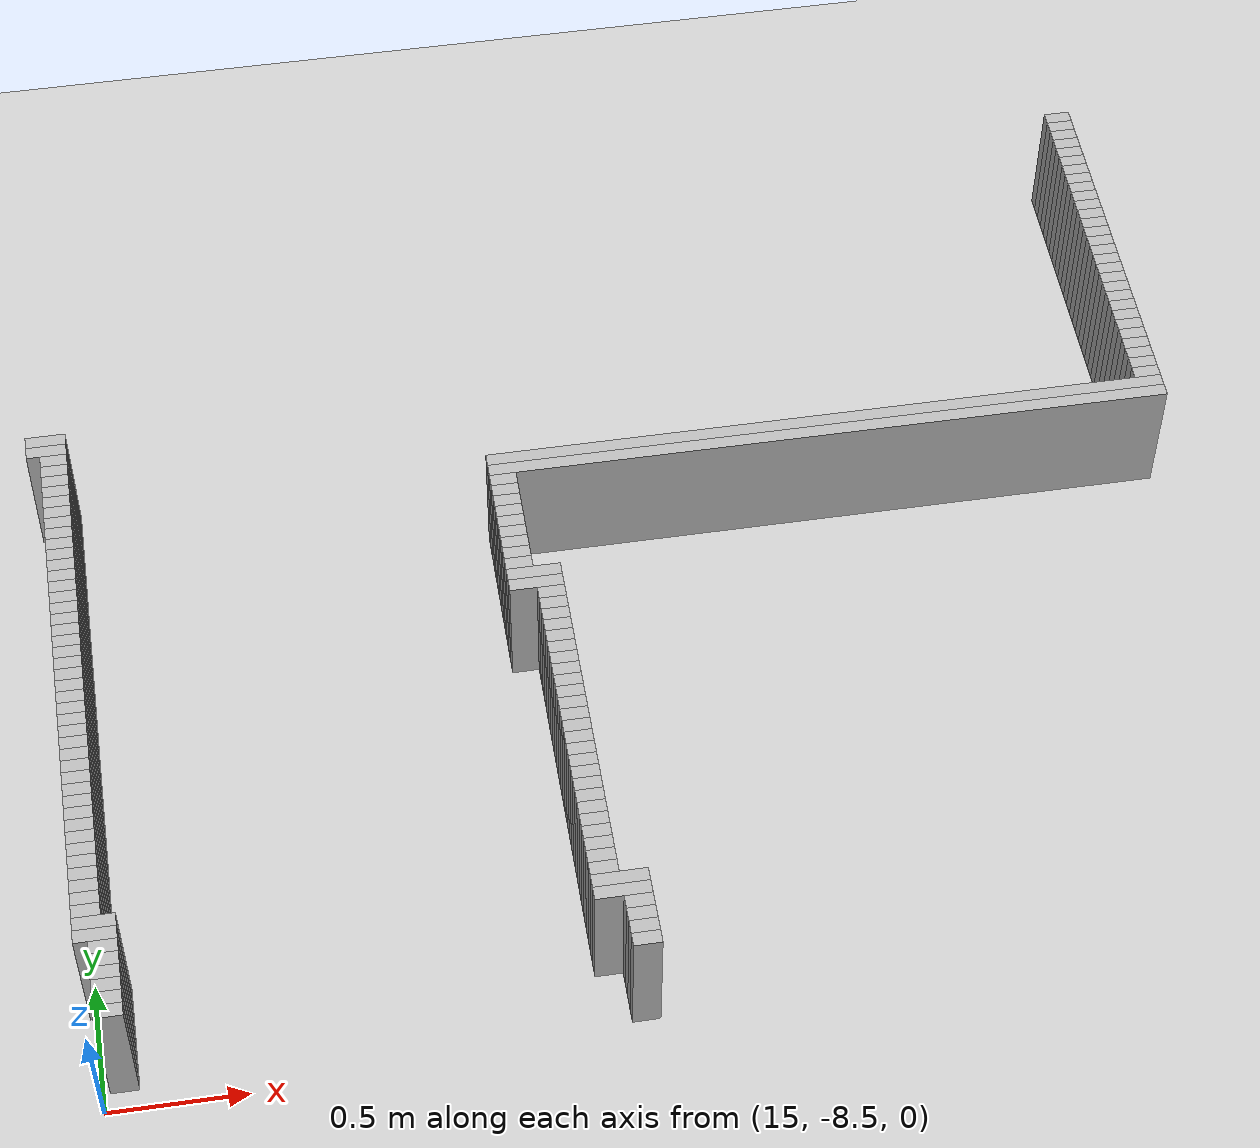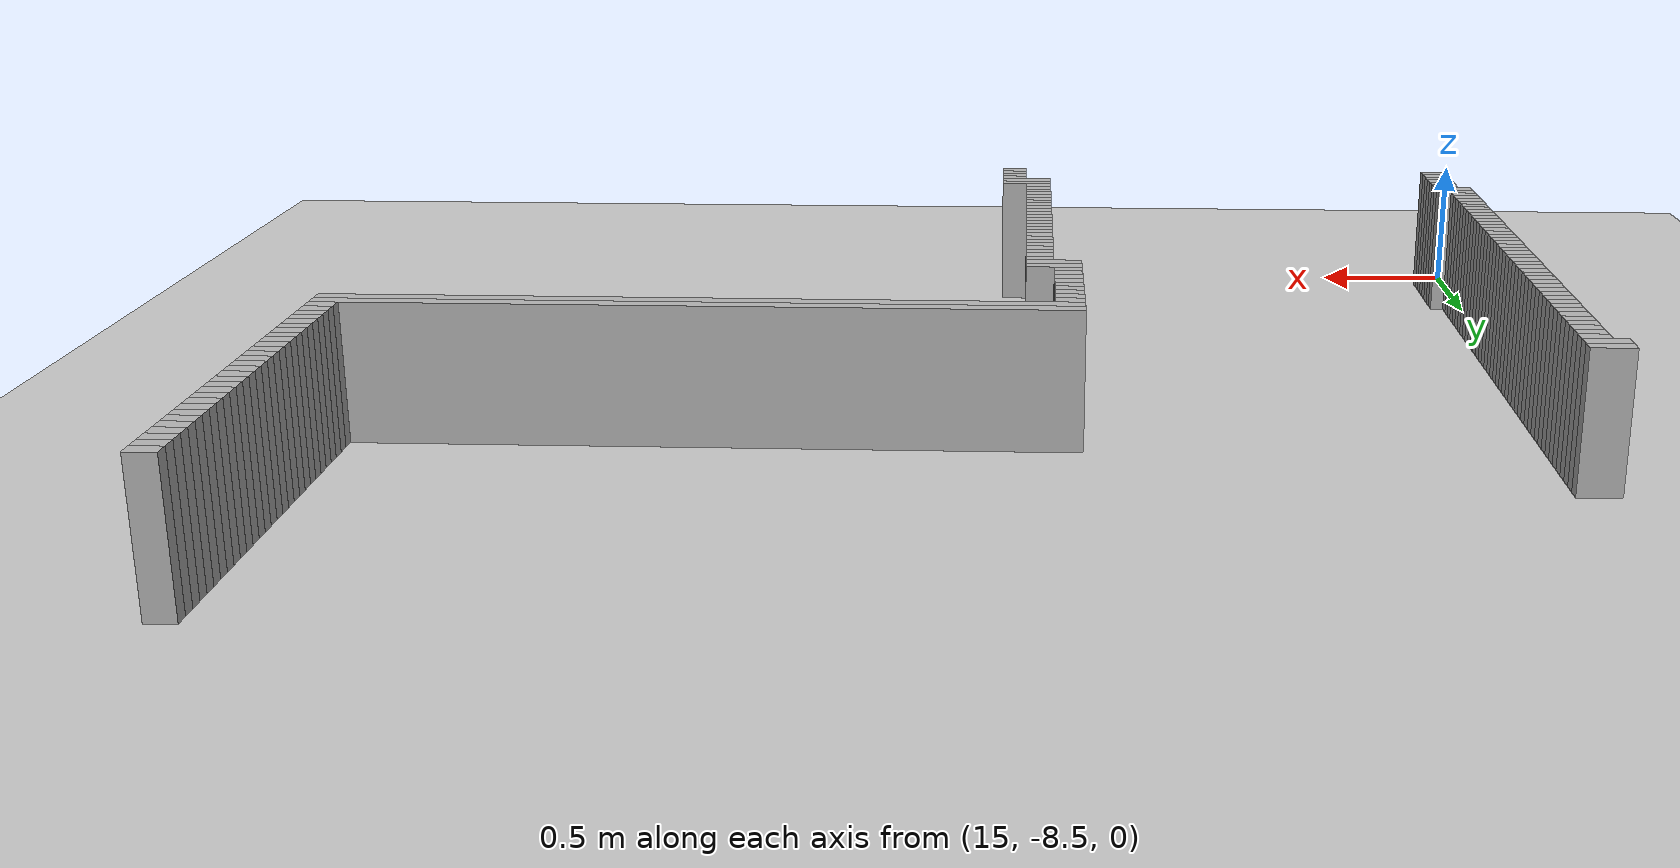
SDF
<sdf version="1.6">
 <world name="optimized_map_world">
  <include><uri>model://sun</uri></include>
  <include><uri>model://ground_plane</uri></include>
  <model name="obstacle_417">
   <static>true</static>
   <link name="link">
    <collision name="collision"><geometry><box><size>0.1 0.05 0.5</size></box></geometry></collision>
    <visual name="visual"><geometry><box><size>0.1 0.05 0.5</size></box></geometry></visual>
   </link>
   <pose>19.175 -4.800000000000001 0.25 0 0 0</pose>
  </model>
  <model name="obstacle_421">
   <static>true</static>
   <link name="link">
    <collision name="collision"><geometry><box><size>0.1 0.05 0.5</size></box></geometry></collision>
    <visual name="visual"><geometry><box><size>0.1 0.05 0.5</size></box></geometry></visual>
   </link>
   <pose>19.175 -4.85 0.25 0 0 0</pose>
  </model>
  <model name="obstacle_425">
   <static>true</static>
   <link name="link">
    <collision name="collision"><geometry><box><size>0.1 0.05 0.5</size></box></geometry></collision>
    <visual name="visual"><geometry><box><size>0.1 0.05 0.5</size></box></geometry></visual>
   </link>
   <pose>19.175 -4.9 0.25 0 0 0</pose>
  </model>
  <model name="obstacle_429">
   <static>true</static>
   <link name="link">
    <collision name="collision"><geometry><box><size>0.1 0.05 0.5</size></box></geometry></collision>
    <visual name="visual"><geometry><box><size>0.1 0.05 0.5</size></box></geometry></visual>
   </link>
   <pose>19.175 -4.949999999999999 0.25 0 0 0</pose>
  </model>
  <model name="obstacle_433">
   <static>true</static>
   <link name="link">
    <collision name="collision"><geometry><box><size>0.1 0.05 0.5</size></box></geometry></collision>
    <visual name="visual"><geometry><box><size>0.1 0.05 0.5</size></box></geometry></visual>
   </link>
   <pose>19.175 -5.0 0.25 0 0 0</pose>
  </model>
  <model name="obstacle_437">
   <static>true</static>
   <link name="link">
    <collision name="collision"><geometry><box><size>0.1 0.05 0.5</size></box></geometry></collision>
    <visual name="visual"><geometry><box><size>0.1 0.05 0.5</size></box></geometry></visual>
   </link>
   <pose>19.175 -5.050000000000001 0.25 0 0 0</pose>
  </model>
  <model name="obstacle_441">
   <static>true</static>
   <link name="link">
    <collision name="collision"><geometry><box><size>0.1 0.05 0.5</size></box></geometry></collision>
    <visual name="visual"><geometry><box><size>0.1 0.05 0.5</size></box></geometry></visual>
   </link>
   <pose>19.175 -5.1 0.25 0 0 0</pose>
  </model>
  <model name="obstacle_445">
   <static>true</static>
   <link name="link">
    <collision name="collision"><geometry><box><size>0.1 0.05 0.5</size></box></geometry></collision>
    <visual name="visual"><geometry><box><size>0.1 0.05 0.5</size></box></geometry></visual>
   </link>
   <pose>19.175 -5.15 0.25 0 0 0</pose>
  </model>
  <model name="obstacle_449">
   <static>true</static>
   <link name="link">
    <collision name="collision"><geometry><box><size>0.1 0.05 0.5</size></box></geometry></collision>
    <visual name="visual"><geometry><box><size>0.1 0.05 0.5</size></box></geometry></visual>
   </link>
   <pose>19.175 -5.199999999999999 0.25 0 0 0</pose>
  </model>
  <model name="obstacle_453">
   <static>true</static>
   <link name="link">
    <collision name="collision"><geometry><box><size>0.1 0.05 0.5</size></box></geometry></collision>
    <visual name="visual"><geometry><box><size>0.1 0.05 0.5</size></box></geometry></visual>
   </link>
   <pose>19.175 -5.25 0.25 0 0 0</pose>
  </model>
  <model name="obstacle_457">
   <static>true</static>
   <link name="link">
    <collision name="collision"><geometry><box><size>0.1 0.05 0.5</size></box></geometry></collision>
    <visual name="visual"><geometry><box><size>0.1 0.05 0.5</size></box></geometry></visual>
   </link>
   <pose>19.175 -5.300000000000001 0.25 0 0 0</pose>
  </model>
  <model name="obstacle_461">
   <static>true</static>
   <link name="link">
    <collision name="collision"><geometry><box><size>0.1 0.05 0.5</size></box></geometry></collision>
    <visual name="visual"><geometry><box><size>0.1 0.05 0.5</size></box></geometry></visual>
   </link>
   <pose>19.175 -5.35 0.25 0 0 0</pose>
  </model>
  <model name="obstacle_465">
   <static>true</static>
   <link name="link">
    <collision name="collision"><geometry><box><size>0.1 0.05 0.5</size></box></geometry></collision>
    <visual name="visual"><geometry><box><size>0.1 0.05 0.5</size></box></geometry></visual>
   </link>
   <pose>19.175 -5.4 0.25 0 0 0</pose>
  </model>
  <model name="obstacle_469">
   <static>true</static>
   <link name="link">
    <collision name="collision"><geometry><box><size>0.1 0.05 0.5</size></box></geometry></collision>
    <visual name="visual"><geometry><box><size>0.1 0.05 0.5</size></box></geometry></visual>
   </link>
   <pose>19.175 -5.449999999999999 0.25 0 0 0</pose>
  </model>
  <model name="obstacle_473">
   <static>true</static>
   <link name="link">
    <collision name="collision"><geometry><box><size>0.1 0.05 0.5</size></box></geometry></collision>
    <visual name="visual"><geometry><box><size>0.1 0.05 0.5</size></box></geometry></visual>
   </link>
   <pose>19.175 -5.5 0.25 0 0 0</pose>
  </model>
  <model name="obstacle_477">
   <static>true</static>
   <link name="link">
    <collision name="collision"><geometry><box><size>0.1 0.05 0.5</size></box></geometry></collision>
    <visual name="visual"><geometry><box><size>0.1 0.05 0.5</size></box></geometry></visual>
   </link>
   <pose>19.175 -5.550000000000001 0.25 0 0 0</pose>
  </model>
  <model name="obstacle_481">
   <static>true</static>
   <link name="link">
    <collision name="collision"><geometry><box><size>0.1 0.05 0.5</size></box></geometry></collision>
    <visual name="visual"><geometry><box><size>0.1 0.05 0.5</size></box></geometry></visual>
   </link>
   <pose>19.175 -5.6 0.25 0 0 0</pose>
  </model>
  <model name="obstacle_485">
   <static>true</static>
   <link name="link">
    <collision name="collision"><geometry><box><size>0.1 0.05 0.5</size></box></geometry></collision>
    <visual name="visual"><geometry><box><size>0.1 0.05 0.5</size></box></geometry></visual>
   </link>
   <pose>19.175 -5.65 0.25 0 0 0</pose>
  </model>
  <model name="obstacle_489">
   <static>true</static>
   <link name="link">
    <collision name="collision"><geometry><box><size>0.1 0.05 0.5</size></box></geometry></collision>
    <visual name="visual"><geometry><box><size>0.1 0.05 0.5</size></box></geometry></visual>
   </link>
   <pose>19.175 -5.699999999999999 0.25 0 0 0</pose>
  </model>
  <model name="obstacle_493">
   <static>true</static>
   <link name="link">
    <collision name="collision"><geometry><box><size>0.1 0.05 0.5</size></box></geometry></collision>
    <visual name="visual"><geometry><box><size>0.1 0.05 0.5</size></box></geometry></visual>
   </link>
   <pose>19.175 -5.75 0.25 0 0 0</pose>
  </model>
  <model name="obstacle_497">
   <static>true</static>
   <link name="link">
    <collision name="collision"><geometry><box><size>0.1 0.05 0.5</size></box></geometry></collision>
    <visual name="visual"><geometry><box><size>0.1 0.05 0.5</size></box></geometry></visual>
   </link>
   <pose>19.175 -5.800000000000001 0.25 0 0 0</pose>
  </model>
  <model name="obstacle_501">
   <static>true</static>
   <link name="link">
    <collision name="collision"><geometry><box><size>0.1 0.05 0.5</size></box></geometry></collision>
    <visual name="visual"><geometry><box><size>0.1 0.05 0.5</size></box></geometry></visual>
   </link>
   <pose>19.175 -5.85 0.25 0 0 0</pose>
  </model>
  <model name="obstacle_504">
   <static>true</static>
   <link name="link">
    <collision name="collision">
     <geometry><box><size>0.15000000000000002 0.05 0.5</size></box></geometry>
    </collision>
    <visual name="visual"><geometry><box><size>0.15000000000000002 0.05 0.5</size></box></geometry></visual>
   </link>
   <pose>15.000000000000004 -5.9 0.25 0 0 0</pose>
  </model>
  <model name="obstacle_505">
   <static>true</static>
   <link name="link">
    <collision name="collision"><geometry><box><size>0.1 0.05 0.5</size></box></geometry></collision>
    <visual name="visual"><geometry><box><size>0.1 0.05 0.5</size></box></geometry></visual>
   </link>
   <pose>19.175 -5.9 0.25 0 0 0</pose>
  </model>
  <model name="obstacle_508">
   <static>true</static>
   <link name="link">
    <collision name="collision">
     <geometry><box><size>0.15000000000000002 0.05 0.5</size></box></geometry>
    </collision>
    <visual name="visual"><geometry><box><size>0.15000000000000002 0.05 0.5</size></box></geometry></visual>
   </link>
   <pose>15.000000000000004 -5.949999999999999 0.25 0 0 0</pose>
  </model>
  <model name="obstacle_509">
   <static>true</static>
   <link name="link">
    <collision name="collision"><geometry><box><size>0.1 0.05 0.5</size></box></geometry></collision>
    <visual name="visual"><geometry><box><size>0.1 0.05 0.5</size></box></geometry></visual>
   </link>
   <pose>19.175 -5.949999999999999 0.25 0 0 0</pose>
  </model>
  <model name="obstacle_512">
   <static>true</static>
   <link name="link">
    <collision name="collision"><geometry><box><size>0.1 0.05 0.5</size></box></geometry></collision>
    <visual name="visual"><geometry><box><size>0.1 0.05 0.5</size></box></geometry></visual>
   </link>
   <pose>15.025000000000002 -6.0 0.25 0 0 0</pose>
  </model>
  <model name="obstacle_513">
   <static>true</static>
   <link name="link">
    <collision name="collision"><geometry><box><size>0.1 0.05 0.5</size></box></geometry></collision>
    <visual name="visual"><geometry><box><size>0.1 0.05 0.5</size></box></geometry></visual>
   </link>
   <pose>19.175 -6.0 0.25 0 0 0</pose>
  </model>
  <model name="obstacle_516">
   <static>true</static>
   <link name="link">
    <collision name="collision"><geometry><box><size>0.1 0.05 0.5</size></box></geometry></collision>
    <visual name="visual"><geometry><box><size>0.1 0.05 0.5</size></box></geometry></visual>
   </link>
   <pose>15.025000000000002 -6.050000000000001 0.25 0 0 0</pose>
  </model>
  <model name="obstacle_517">
   <static>true</static>
   <link name="link">
    <collision name="collision"><geometry><box><size>0.1 0.05 0.5</size></box></geometry></collision>
    <visual name="visual"><geometry><box><size>0.1 0.05 0.5</size></box></geometry></visual>
   </link>
   <pose>19.175 -6.050000000000001 0.25 0 0 0</pose>
  </model>
  <model name="obstacle_520">
   <static>true</static>
   <link name="link">
    <collision name="collision"><geometry><box><size>0.1 0.05 0.5</size></box></geometry></collision>
    <visual name="visual"><geometry><box><size>0.1 0.05 0.5</size></box></geometry></visual>
   </link>
   <pose>15.025000000000002 -6.1 0.25 0 0 0</pose>
  </model>
  <model name="obstacle_521">
   <static>true</static>
   <link name="link">
    <collision name="collision"><geometry><box><size>0.1 0.05 0.5</size></box></geometry></collision>
    <visual name="visual"><geometry><box><size>0.1 0.05 0.5</size></box></geometry></visual>
   </link>
   <pose>19.175 -6.1 0.25 0 0 0</pose>
  </model>
  <model name="obstacle_524">
   <static>true</static>
   <link name="link">
    <collision name="collision"><geometry><box><size>0.1 0.05 0.5</size></box></geometry></collision>
    <visual name="visual"><geometry><box><size>0.1 0.05 0.5</size></box></geometry></visual>
   </link>
   <pose>15.025000000000002 -6.15 0.25 0 0 0</pose>
  </model>
  <model name="obstacle_525">
   <static>true</static>
   <link name="link">
    <collision name="collision"><geometry><box><size>0.1 0.05 0.5</size></box></geometry></collision>
    <visual name="visual"><geometry><box><size>0.1 0.05 0.5</size></box></geometry></visual>
   </link>
   <pose>19.175 -6.15 0.25 0 0 0</pose>
  </model>
  <model name="obstacle_528">
   <static>true</static>
   <link name="link">
    <collision name="collision"><geometry><box><size>0.1 0.05 0.5</size></box></geometry></collision>
    <visual name="visual"><geometry><box><size>0.1 0.05 0.5</size></box></geometry></visual>
   </link>
   <pose>15.025000000000002 -6.199999999999999 0.25 0 0 0</pose>
  </model>
  <model name="obstacle_529">
   <static>true</static>
   <link name="link">
    <collision name="collision"><geometry><box><size>0.1 0.05 0.5</size></box></geometry></collision>
    <visual name="visual"><geometry><box><size>0.1 0.05 0.5</size></box></geometry></visual>
   </link>
   <pose>19.175 -6.199999999999999 0.25 0 0 0</pose>
  </model>
  <model name="obstacle_532">
   <static>true</static>
   <link name="link">
    <collision name="collision"><geometry><box><size>0.1 0.05 0.5</size></box></geometry></collision>
    <visual name="visual"><geometry><box><size>0.1 0.05 0.5</size></box></geometry></visual>
   </link>
   <pose>15.025000000000002 -6.25 0.25 0 0 0</pose>
  </model>
  <model name="obstacle_533">
   <static>true</static>
   <link name="link">
    <collision name="collision"><geometry><box><size>2.6 0.05 0.5</size></box></geometry></collision>
    <visual name="visual"><geometry><box><size>2.6 0.05 0.5</size></box></geometry></visual>
   </link>
   <pose>17.925 -6.25 0.25 0 0 0</pose>
  </model>
  <model name="obstacle_536">
   <static>true</static>
   <link name="link">
    <collision name="collision"><geometry><box><size>0.1 0.05 0.5</size></box></geometry></collision>
    <visual name="visual"><geometry><box><size>0.1 0.05 0.5</size></box></geometry></visual>
   </link>
   <pose>15.025000000000002 -6.300000000000001 0.25 0 0 0</pose>
  </model>
  <model name="obstacle_537">
   <static>true</static>
   <link name="link">
    <collision name="collision"><geometry><box><size>2.6 0.05 0.5</size></box></geometry></collision>
    <visual name="visual"><geometry><box><size>2.6 0.05 0.5</size></box></geometry></visual>
   </link>
   <pose>17.925 -6.300000000000001 0.25 0 0 0</pose>
  </model>
  <model name="obstacle_540">
   <static>true</static>
   <link name="link">
    <collision name="collision"><geometry><box><size>0.1 0.05 0.5</size></box></geometry></collision>
    <visual name="visual"><geometry><box><size>0.1 0.05 0.5</size></box></geometry></visual>
   </link>
   <pose>15.025000000000002 -6.35 0.25 0 0 0</pose>
  </model>
  <model name="obstacle_541">
   <static>true</static>
   <link name="link">
    <collision name="collision"><geometry><box><size>0.1 0.05 0.5</size></box></geometry></collision>
    <visual name="visual"><geometry><box><size>0.1 0.05 0.5</size></box></geometry></visual>
   </link>
   <pose>16.675 -6.35 0.25 0 0 0</pose>
  </model>
  <model name="obstacle_544">
   <static>true</static>
   <link name="link">
    <collision name="collision"><geometry><box><size>0.1 0.05 0.5</size></box></geometry></collision>
    <visual name="visual"><geometry><box><size>0.1 0.05 0.5</size></box></geometry></visual>
   </link>
   <pose>15.025000000000002 -6.4 0.25 0 0 0</pose>
  </model>
  <model name="obstacle_545">
   <static>true</static>
   <link name="link">
    <collision name="collision"><geometry><box><size>0.1 0.05 0.5</size></box></geometry></collision>
    <visual name="visual"><geometry><box><size>0.1 0.05 0.5</size></box></geometry></visual>
   </link>
   <pose>16.675 -6.4 0.25 0 0 0</pose>
  </model>
  <model name="obstacle_548">
   <static>true</static>
   <link name="link">
    <collision name="collision"><geometry><box><size>0.1 0.05 0.5</size></box></geometry></collision>
    <visual name="visual"><geometry><box><size>0.1 0.05 0.5</size></box></geometry></visual>
   </link>
   <pose>15.025000000000002 -6.449999999999999 0.25 0 0 0</pose>
  </model>
  <model name="obstacle_549">
   <static>true</static>
   <link name="link">
    <collision name="collision"><geometry><box><size>0.1 0.05 0.5</size></box></geometry></collision>
    <visual name="visual"><geometry><box><size>0.1 0.05 0.5</size></box></geometry></visual>
   </link>
   <pose>16.675 -6.449999999999999 0.25 0 0 0</pose>
  </model>
  <model name="obstacle_552">
   <static>true</static>
   <link name="link">
    <collision name="collision"><geometry><box><size>0.1 0.05 0.5</size></box></geometry></collision>
    <visual name="visual"><geometry><box><size>0.1 0.05 0.5</size></box></geometry></visual>
   </link>
   <pose>15.025000000000002 -6.5 0.25 0 0 0</pose>
  </model>
  <model name="obstacle_553">
   <static>true</static>
   <link name="link">
    <collision name="collision"><geometry><box><size>0.1 0.05 0.5</size></box></geometry></collision>
    <visual name="visual"><geometry><box><size>0.1 0.05 0.5</size></box></geometry></visual>
   </link>
   <pose>16.675 -6.5 0.25 0 0 0</pose>
  </model>
  <model name="obstacle_556">
   <static>true</static>
   <link name="link">
    <collision name="collision"><geometry><box><size>0.1 0.05 0.5</size></box></geometry></collision>
    <visual name="visual"><geometry><box><size>0.1 0.05 0.5</size></box></geometry></visual>
   </link>
   <pose>15.025000000000002 -6.550000000000001 0.25 0 0 0</pose>
  </model>
  <model name="obstacle_557">
   <static>true</static>
   <link name="link">
    <collision name="collision"><geometry><box><size>0.1 0.05 0.5</size></box></geometry></collision>
    <visual name="visual"><geometry><box><size>0.1 0.05 0.5</size></box></geometry></visual>
   </link>
   <pose>16.675 -6.550000000000001 0.25 0 0 0</pose>
  </model>
  <model name="obstacle_560">
   <static>true</static>
   <link name="link">
    <collision name="collision"><geometry><box><size>0.1 0.05 0.5</size></box></geometry></collision>
    <visual name="visual"><geometry><box><size>0.1 0.05 0.5</size></box></geometry></visual>
   </link>
   <pose>15.025000000000002 -6.6 0.25 0 0 0</pose>
  </model>
  <model name="obstacle_561">
   <static>true</static>
   <link name="link">
    <collision name="collision"><geometry><box><size>0.1 0.05 0.5</size></box></geometry></collision>
    <visual name="visual"><geometry><box><size>0.1 0.05 0.5</size></box></geometry></visual>
   </link>
   <pose>16.675 -6.6 0.25 0 0 0</pose>
  </model>
  <model name="obstacle_564">
   <static>true</static>
   <link name="link">
    <collision name="collision"><geometry><box><size>0.1 0.05 0.5</size></box></geometry></collision>
    <visual name="visual"><geometry><box><size>0.1 0.05 0.5</size></box></geometry></visual>
   </link>
   <pose>15.025000000000002 -6.65 0.25 0 0 0</pose>
  </model>
  <model name="obstacle_565">
   <static>true</static>
   <link name="link">
    <collision name="collision"><geometry><box><size>0.1 0.05 0.5</size></box></geometry></collision>
    <visual name="visual"><geometry><box><size>0.1 0.05 0.5</size></box></geometry></visual>
   </link>
   <pose>16.675 -6.65 0.25 0 0 0</pose>
  </model>
  <model name="obstacle_568">
   <static>true</static>
   <link name="link">
    <collision name="collision"><geometry><box><size>0.1 0.05 0.5</size></box></geometry></collision>
    <visual name="visual"><geometry><box><size>0.1 0.05 0.5</size></box></geometry></visual>
   </link>
   <pose>15.025000000000002 -6.699999999999999 0.25 0 0 0</pose>
  </model>
  <model name="obstacle_569">
   <static>true</static>
   <link name="link">
    <collision name="collision"><geometry><box><size>0.1 0.05 0.5</size></box></geometry></collision>
    <visual name="visual"><geometry><box><size>0.1 0.05 0.5</size></box></geometry></visual>
   </link>
   <pose>16.675 -6.699999999999999 0.25 0 0 0</pose>
  </model>
  <model name="obstacle_572">
   <static>true</static>
   <link name="link">
    <collision name="collision"><geometry><box><size>0.1 0.05 0.5</size></box></geometry></collision>
    <visual name="visual"><geometry><box><size>0.1 0.05 0.5</size></box></geometry></visual>
   </link>
   <pose>15.025000000000002 -6.75 0.25 0 0 0</pose>
  </model>
  <model name="obstacle_573">
   <static>true</static>
   <link name="link">
    <collision name="collision"><geometry><box><size>0.1 0.05 0.5</size></box></geometry></collision>
    <visual name="visual"><geometry><box><size>0.1 0.05 0.5</size></box></geometry></visual>
   </link>
   <pose>16.675 -6.75 0.25 0 0 0</pose>
  </model>
  <model name="obstacle_576">
   <static>true</static>
   <link name="link">
    <collision name="collision"><geometry><box><size>0.1 0.05 0.5</size></box></geometry></collision>
    <visual name="visual"><geometry><box><size>0.1 0.05 0.5</size></box></geometry></visual>
   </link>
   <pose>15.025000000000002 -6.800000000000001 0.25 0 0 0</pose>
  </model>
  <model name="obstacle_577">
   <static>true</static>
   <link name="link">
    <collision name="collision"><geometry><box><size>0.2 0.05 0.5</size></box></geometry></collision>
    <visual name="visual"><geometry><box><size>0.2 0.05 0.5</size></box></geometry></visual>
   </link>
   <pose>16.725000000000005 -6.800000000000001 0.25 0 0 0</pose>
  </model>
  <model name="obstacle_580">
   <static>true</static>
   <link name="link">
    <collision name="collision"><geometry><box><size>0.1 0.05 0.5</size></box></geometry></collision>
    <visual name="visual"><geometry><box><size>0.1 0.05 0.5</size></box></geometry></visual>
   </link>
   <pose>15.025000000000002 -6.85 0.25 0 0 0</pose>
  </model>
  <model name="obstacle_581">
   <static>true</static>
   <link name="link">
    <collision name="collision"><geometry><box><size>0.2 0.05 0.5</size></box></geometry></collision>
    <visual name="visual"><geometry><box><size>0.2 0.05 0.5</size></box></geometry></visual>
   </link>
   <pose>16.725000000000005 -6.85 0.25 0 0 0</pose>
  </model>
  <model name="obstacle_584">
   <static>true</static>
   <link name="link">
    <collision name="collision"><geometry><box><size>0.1 0.05 0.5</size></box></geometry></collision>
    <visual name="visual"><geometry><box><size>0.1 0.05 0.5</size></box></geometry></visual>
   </link>
   <pose>15.025000000000002 -6.9 0.25 0 0 0</pose>
  </model>
  <model name="obstacle_585">
   <static>true</static>
   <link name="link">
    <collision name="collision"><geometry><box><size>0.1 0.05 0.5</size></box></geometry></collision>
    <visual name="visual"><geometry><box><size>0.1 0.05 0.5</size></box></geometry></visual>
   </link>
   <pose>16.775000000000002 -6.9 0.25 0 0 0</pose>
  </model>
  <model name="obstacle_588">
   <static>true</static>
   <link name="link">
    <collision name="collision"><geometry><box><size>0.1 0.05 0.5</size></box></geometry></collision>
    <visual name="visual"><geometry><box><size>0.1 0.05 0.5</size></box></geometry></visual>
   </link>
   <pose>15.025000000000002 -6.949999999999999 0.25 0 0 0</pose>
  </model>
  <model name="obstacle_589">
   <static>true</static>
   <link name="link">
    <collision name="collision"><geometry><box><size>0.1 0.05 0.5</size></box></geometry></collision>
    <visual name="visual"><geometry><box><size>0.1 0.05 0.5</size></box></geometry></visual>
   </link>
   <pose>16.775000000000002 -6.949999999999999 0.25 0 0 0</pose>
  </model>
  <model name="obstacle_592">
   <static>true</static>
   <link name="link">
    <collision name="collision"><geometry><box><size>0.1 0.05 0.5</size></box></geometry></collision>
    <visual name="visual"><geometry><box><size>0.1 0.05 0.5</size></box></geometry></visual>
   </link>
   <pose>15.025000000000002 -7.0 0.25 0 0 0</pose>
  </model>
  <model name="obstacle_593">
   <static>true</static>
   <link name="link">
    <collision name="collision"><geometry><box><size>0.1 0.05 0.5</size></box></geometry></collision>
    <visual name="visual"><geometry><box><size>0.1 0.05 0.5</size></box></geometry></visual>
   </link>
   <pose>16.775000000000002 -7.0 0.25 0 0 0</pose>
  </model>
  <model name="obstacle_596">
   <static>true</static>
   <link name="link">
    <collision name="collision"><geometry><box><size>0.1 0.05 0.5</size></box></geometry></collision>
    <visual name="visual"><geometry><box><size>0.1 0.05 0.5</size></box></geometry></visual>
   </link>
   <pose>15.025000000000002 -7.050000000000001 0.25 0 0 0</pose>
  </model>
  <model name="obstacle_597">
   <static>true</static>
   <link name="link">
    <collision name="collision"><geometry><box><size>0.1 0.05 0.5</size></box></geometry></collision>
    <visual name="visual"><geometry><box><size>0.1 0.05 0.5</size></box></geometry></visual>
   </link>
   <pose>16.775000000000002 -7.050000000000001 0.25 0 0 0</pose>
  </model>
  <model name="obstacle_600">
   <static>true</static>
   <link name="link">
    <collision name="collision"><geometry><box><size>0.1 0.05 0.5</size></box></geometry></collision>
    <visual name="visual"><geometry><box><size>0.1 0.05 0.5</size></box></geometry></visual>
   </link>
   <pose>15.025000000000002 -7.1 0.25 0 0 0</pose>
  </model>
  <model name="obstacle_601">
   <static>true</static>
   <link name="link">
    <collision name="collision"><geometry><box><size>0.1 0.05 0.5</size></box></geometry></collision>
    <visual name="visual"><geometry><box><size>0.1 0.05 0.5</size></box></geometry></visual>
   </link>
   <pose>16.775000000000002 -7.1 0.25 0 0 0</pose>
  </model>
  <model name="obstacle_604">
   <static>true</static>
   <link name="link">
    <collision name="collision"><geometry><box><size>0.1 0.05 0.5</size></box></geometry></collision>
    <visual name="visual"><geometry><box><size>0.1 0.05 0.5</size></box></geometry></visual>
   </link>
   <pose>15.025000000000002 -7.15 0.25 0 0 0</pose>
  </model>
  <model name="obstacle_605">
   <static>true</static>
   <link name="link">
    <collision name="collision"><geometry><box><size>0.1 0.05 0.5</size></box></geometry></collision>
    <visual name="visual"><geometry><box><size>0.1 0.05 0.5</size></box></geometry></visual>
   </link>
   <pose>16.775000000000002 -7.15 0.25 0 0 0</pose>
  </model>
  <model name="obstacle_608">
   <static>true</static>
   <link name="link">
    <collision name="collision"><geometry><box><size>0.1 0.05 0.5</size></box></geometry></collision>
    <visual name="visual"><geometry><box><size>0.1 0.05 0.5</size></box></geometry></visual>
   </link>
   <pose>15.025000000000002 -7.199999999999999 0.25 0 0 0</pose>
  </model>
  <model name="obstacle_609">
   <static>true</static>
   <link name="link">
    <collision name="collision"><geometry><box><size>0.1 0.05 0.5</size></box></geometry></collision>
    <visual name="visual"><geometry><box><size>0.1 0.05 0.5</size></box></geometry></visual>
   </link>
   <pose>16.775000000000002 -7.199999999999999 0.25 0 0 0</pose>
  </model>
  <model name="obstacle_612">
   <static>true</static>
   <link name="link">
    <collision name="collision"><geometry><box><size>0.1 0.05 0.5</size></box></geometry></collision>
    <visual name="visual"><geometry><box><size>0.1 0.05 0.5</size></box></geometry></visual>
   </link>
   <pose>15.025000000000002 -7.25 0.25 0 0 0</pose>
  </model>
  <model name="obstacle_613">
   <static>true</static>
   <link name="link">
    <collision name="collision"><geometry><box><size>0.1 0.05 0.5</size></box></geometry></collision>
    <visual name="visual"><geometry><box><size>0.1 0.05 0.5</size></box></geometry></visual>
   </link>
   <pose>16.775000000000002 -7.25 0.25 0 0 0</pose>
  </model>
  <model name="obstacle_616">
   <static>true</static>
   <link name="link">
    <collision name="collision"><geometry><box><size>0.1 0.05 0.5</size></box></geometry></collision>
    <visual name="visual"><geometry><box><size>0.1 0.05 0.5</size></box></geometry></visual>
   </link>
   <pose>15.025000000000002 -7.300000000000001 0.25 0 0 0</pose>
  </model>
  <model name="obstacle_617">
   <static>true</static>
   <link name="link">
    <collision name="collision"><geometry><box><size>0.1 0.05 0.5</size></box></geometry></collision>
    <visual name="visual"><geometry><box><size>0.1 0.05 0.5</size></box></geometry></visual>
   </link>
   <pose>16.775000000000002 -7.300000000000001 0.25 0 0 0</pose>
  </model>
  <model name="obstacle_620">
   <static>true</static>
   <link name="link">
    <collision name="collision"><geometry><box><size>0.1 0.05 0.5</size></box></geometry></collision>
    <visual name="visual"><geometry><box><size>0.1 0.05 0.5</size></box></geometry></visual>
   </link>
   <pose>15.025000000000002 -7.35 0.25 0 0 0</pose>
  </model>
  <model name="obstacle_621">
   <static>true</static>
   <link name="link">
    <collision name="collision"><geometry><box><size>0.1 0.05 0.5</size></box></geometry></collision>
    <visual name="visual"><geometry><box><size>0.1 0.05 0.5</size></box></geometry></visual>
   </link>
   <pose>16.775000000000002 -7.35 0.25 0 0 0</pose>
  </model>
  <model name="obstacle_624">
   <static>true</static>
   <link name="link">
    <collision name="collision"><geometry><box><size>0.1 0.05 0.5</size></box></geometry></collision>
    <visual name="visual"><geometry><box><size>0.1 0.05 0.5</size></box></geometry></visual>
   </link>
   <pose>15.025000000000002 -7.4 0.25 0 0 0</pose>
  </model>
  <model name="obstacle_625">
   <static>true</static>
   <link name="link">
    <collision name="collision"><geometry><box><size>0.1 0.05 0.5</size></box></geometry></collision>
    <visual name="visual"><geometry><box><size>0.1 0.05 0.5</size></box></geometry></visual>
   </link>
   <pose>16.775000000000002 -7.4 0.25 0 0 0</pose>
  </model>
  <model name="obstacle_628">
   <static>true</static>
   <link name="link">
    <collision name="collision"><geometry><box><size>0.1 0.05 0.5</size></box></geometry></collision>
    <visual name="visual"><geometry><box><size>0.1 0.05 0.5</size></box></geometry></visual>
   </link>
   <pose>15.025000000000002 -7.449999999999999 0.25 0 0 0</pose>
  </model>
  <model name="obstacle_629">
   <static>true</static>
   <link name="link">
    <collision name="collision"><geometry><box><size>0.1 0.05 0.5</size></box></geometry></collision>
    <visual name="visual"><geometry><box><size>0.1 0.05 0.5</size></box></geometry></visual>
   </link>
   <pose>16.775000000000002 -7.449999999999999 0.25 0 0 0</pose>
  </model>
  <model name="obstacle_632">
   <static>true</static>
   <link name="link">
    <collision name="collision"><geometry><box><size>0.1 0.05 0.5</size></box></geometry></collision>
    <visual name="visual"><geometry><box><size>0.1 0.05 0.5</size></box></geometry></visual>
   </link>
   <pose>15.025000000000002 -7.5 0.25 0 0 0</pose>
  </model>
  <model name="obstacle_633">
   <static>true</static>
   <link name="link">
    <collision name="collision"><geometry><box><size>0.1 0.05 0.5</size></box></geometry></collision>
    <visual name="visual"><geometry><box><size>0.1 0.05 0.5</size></box></geometry></visual>
   </link>
   <pose>16.775000000000002 -7.5 0.25 0 0 0</pose>
  </model>
  <model name="obstacle_636">
   <static>true</static>
   <link name="link">
    <collision name="collision"><geometry><box><size>0.1 0.05 0.5</size></box></geometry></collision>
    <visual name="visual"><geometry><box><size>0.1 0.05 0.5</size></box></geometry></visual>
   </link>
   <pose>15.025000000000002 -7.550000000000001 0.25 0 0 0</pose>
  </model>
  <model name="obstacle_637">
   <static>true</static>
   <link name="link">
    <collision name="collision"><geometry><box><size>0.1 0.05 0.5</size></box></geometry></collision>
    <visual name="visual"><geometry><box><size>0.1 0.05 0.5</size></box></geometry></visual>
   </link>
   <pose>16.775000000000002 -7.550000000000001 0.25 0 0 0</pose>
  </model>
  <model name="obstacle_640">
   <static>true</static>
   <link name="link">
    <collision name="collision"><geometry><box><size>0.1 0.05 0.5</size></box></geometry></collision>
    <visual name="visual"><geometry><box><size>0.1 0.05 0.5</size></box></geometry></visual>
   </link>
   <pose>15.025000000000002 -7.6 0.25 0 0 0</pose>
  </model>
  <model name="obstacle_641">
   <static>true</static>
   <link name="link">
    <collision name="collision"><geometry><box><size>0.1 0.05 0.5</size></box></geometry></collision>
    <visual name="visual"><geometry><box><size>0.1 0.05 0.5</size></box></geometry></visual>
   </link>
   <pose>16.775000000000002 -7.6 0.25 0 0 0</pose>
  </model>
  <model name="obstacle_644">
   <static>true</static>
   <link name="link">
    <collision name="collision"><geometry><box><size>0.1 0.05 0.5</size></box></geometry></collision>
    <visual name="visual"><geometry><box><size>0.1 0.05 0.5</size></box></geometry></visual>
   </link>
   <pose>15.025000000000002 -7.65 0.25 0 0 0</pose>
  </model>
  <model name="obstacle_645">
   <static>true</static>
   <link name="link">
    <collision name="collision"><geometry><box><size>0.1 0.05 0.5</size></box></geometry></collision>
    <visual name="visual"><geometry><box><size>0.1 0.05 0.5</size></box></geometry></visual>
   </link>
   <pose>16.775000000000002 -7.65 0.25 0 0 0</pose>
  </model>
  <model name="obstacle_648">
   <static>true</static>
   <link name="link">
    <collision name="collision"><geometry><box><size>0.1 0.05 0.5</size></box></geometry></collision>
    <visual name="visual"><geometry><box><size>0.1 0.05 0.5</size></box></geometry></visual>
   </link>
   <pose>15.025000000000002 -7.699999999999999 0.25 0 0 0</pose>
  </model>
  <model name="obstacle_649">
   <static>true</static>
   <link name="link">
    <collision name="collision"><geometry><box><size>0.1 0.05 0.5</size></box></geometry></collision>
    <visual name="visual"><geometry><box><size>0.1 0.05 0.5</size></box></geometry></visual>
   </link>
   <pose>16.775000000000002 -7.699999999999999 0.25 0 0 0</pose>
  </model>
  <model name="obstacle_652">
   <static>true</static>
   <link name="link">
    <collision name="collision"><geometry><box><size>0.1 0.05 0.5</size></box></geometry></collision>
    <visual name="visual"><geometry><box><size>0.1 0.05 0.5</size></box></geometry></visual>
   </link>
   <pose>15.025000000000002 -7.75 0.25 0 0 0</pose>
  </model>
  <model name="obstacle_653">
   <static>true</static>
   <link name="link">
    <collision name="collision"><geometry><box><size>0.1 0.05 0.5</size></box></geometry></collision>
    <visual name="visual"><geometry><box><size>0.1 0.05 0.5</size></box></geometry></visual>
   </link>
   <pose>16.775000000000002 -7.75 0.25 0 0 0</pose>
  </model>
  <model name="obstacle_656">
   <static>true</static>
   <link name="link">
    <collision name="collision"><geometry><box><size>0.1 0.05 0.5</size></box></geometry></collision>
    <visual name="visual"><geometry><box><size>0.1 0.05 0.5</size></box></geometry></visual>
   </link>
   <pose>15.025000000000002 -7.800000000000001 0.25 0 0 0</pose>
  </model>
  <model name="obstacle_657">
   <static>true</static>
   <link name="link">
    <collision name="collision"><geometry><box><size>0.1 0.05 0.5</size></box></geometry></collision>
    <visual name="visual"><geometry><box><size>0.1 0.05 0.5</size></box></geometry></visual>
   </link>
   <pose>16.775000000000002 -7.800000000000001 0.25 0 0 0</pose>
  </model>
  <model name="obstacle_660">
   <static>true</static>
   <link name="link">
    <collision name="collision"><geometry><box><size>0.1 0.05 0.5</size></box></geometry></collision>
    <visual name="visual"><geometry><box><size>0.1 0.05 0.5</size></box></geometry></visual>
   </link>
   <pose>15.025000000000002 -7.85 0.25 0 0 0</pose>
  </model>
  <model name="obstacle_661">
   <static>true</static>
   <link name="link">
    <collision name="collision"><geometry><box><size>0.1 0.05 0.5</size></box></geometry></collision>
    <visual name="visual"><geometry><box><size>0.1 0.05 0.5</size></box></geometry></visual>
   </link>
   <pose>16.775000000000002 -7.85 0.25 0 0 0</pose>
  </model>
  <model name="obstacle_664">
   <static>true</static>
   <link name="link">
    <collision name="collision"><geometry><box><size>0.1 0.05 0.5</size></box></geometry></collision>
    <visual name="visual"><geometry><box><size>0.1 0.05 0.5</size></box></geometry></visual>
   </link>
   <pose>15.025000000000002 -7.9 0.25 0 0 0</pose>
  </model>
  <model name="obstacle_665">
   <static>true</static>
   <link name="link">
    <collision name="collision"><geometry><box><size>0.1 0.05 0.5</size></box></geometry></collision>
    <visual name="visual"><geometry><box><size>0.1 0.05 0.5</size></box></geometry></visual>
   </link>
   <pose>16.775000000000002 -7.9 0.25 0 0 0</pose>
  </model>
  <model name="obstacle_668">
   <static>true</static>
   <link name="link">
    <collision name="collision"><geometry><box><size>0.1 0.05 0.5</size></box></geometry></collision>
    <visual name="visual"><geometry><box><size>0.1 0.05 0.5</size></box></geometry></visual>
   </link>
   <pose>15.025000000000002 -7.949999999999999 0.25 0 0 0</pose>
  </model>
  <model name="obstacle_669">
   <static>true</static>
   <link name="link">
    <collision name="collision"><geometry><box><size>0.1 0.05 0.5</size></box></geometry></collision>
    <visual name="visual"><geometry><box><size>0.1 0.05 0.5</size></box></geometry></visual>
   </link>
   <pose>16.775000000000002 -7.949999999999999 0.25 0 0 0</pose>
  </model>
  <model name="obstacle_672">
   <static>true</static>
   <link name="link">
    <collision name="collision"><geometry><box><size>0.1 0.05 0.5</size></box></geometry></collision>
    <visual name="visual"><geometry><box><size>0.1 0.05 0.5</size></box></geometry></visual>
   </link>
   <pose>15.025000000000002 -8.0 0.25 0 0 0</pose>
  </model>
  <model name="obstacle_673">
   <static>true</static>
   <link name="link">
    <collision name="collision"><geometry><box><size>0.1 0.05 0.5</size></box></geometry></collision>
    <visual name="visual"><geometry><box><size>0.1 0.05 0.5</size></box></geometry></visual>
   </link>
   <pose>16.775000000000002 -8.0 0.25 0 0 0</pose>
  </model>
  <model name="obstacle_676">
   <static>true</static>
   <link name="link">
    <collision name="collision">
     <geometry><box><size>0.15000000000000002 0.05 0.5</size></box></geometry>
    </collision>
    <visual name="visual"><geometry><box><size>0.15000000000000002 0.05 0.5</size></box></geometry></visual>
   </link>
   <pose>15.05 -8.05 0.25 0 0 0</pose>
  </model>
  <model name="obstacle_677">
   <static>true</static>
   <link name="link">
    <collision name="collision"><geometry><box><size>0.1 0.05 0.5</size></box></geometry></collision>
    <visual name="visual"><geometry><box><size>0.1 0.05 0.5</size></box></geometry></visual>
   </link>
   <pose>16.775000000000002 -8.05 0.25 0 0 0</pose>
  </model>
  <model name="obstacle_680">
   <static>true</static>
   <link name="link">
    <collision name="collision">
     <geometry><box><size>0.15000000000000002 0.05 0.5</size></box></geometry>
    </collision>
    <visual name="visual"><geometry><box><size>0.15000000000000002 0.05 0.5</size></box></geometry></visual>
   </link>
   <pose>15.05 -8.1 0.25 0 0 0</pose>
  </model>
  <model name="obstacle_681">
   <static>true</static>
   <link name="link">
    <collision name="collision"><geometry><box><size>0.1 0.05 0.5</size></box></geometry></collision>
    <visual name="visual"><geometry><box><size>0.1 0.05 0.5</size></box></geometry></visual>
   </link>
   <pose>16.775000000000002 -8.1 0.25 0 0 0</pose>
  </model>
  <model name="obstacle_684">
   <static>true</static>
   <link name="link">
    <collision name="collision"><geometry><box><size>0.1 0.05 0.5</size></box></geometry></collision>
    <visual name="visual"><geometry><box><size>0.1 0.05 0.5</size></box></geometry></visual>
   </link>
   <pose>15.075000000000003 -8.15 0.25 0 0 0</pose>
  </model>
  <model name="obstacle_685">
   <static>true</static>
   <link name="link">
    <collision name="collision"><geometry><box><size>0.2 0.05 0.5</size></box></geometry></collision>
    <visual name="visual"><geometry><box><size>0.2 0.05 0.5</size></box></geometry></visual>
   </link>
   <pose>16.825 -8.15 0.25 0 0 0</pose>
  </model>
  <model name="obstacle_688">
   <static>true</static>
   <link name="link">
    <collision name="collision"><geometry><box><size>0.1 0.05 0.5</size></box></geometry></collision>
    <visual name="visual"><geometry><box><size>0.1 0.05 0.5</size></box></geometry></visual>
   </link>
   <pose>15.075000000000003 -8.2 0.25 0 0 0</pose>
  </model>
  <model name="obstacle_689">
   <static>true</static>
   <link name="link">
    <collision name="collision"><geometry><box><size>0.2 0.05 0.5</size></box></geometry></collision>
    <visual name="visual"><geometry><box><size>0.2 0.05 0.5</size></box></geometry></visual>
   </link>
   <pose>16.825 -8.2 0.25 0 0 0</pose>
  </model>
  <model name="obstacle_692">
   <static>true</static>
   <link name="link">
    <collision name="collision"><geometry><box><size>0.1 0.05 0.5</size></box></geometry></collision>
    <visual name="visual"><geometry><box><size>0.1 0.05 0.5</size></box></geometry></visual>
   </link>
   <pose>15.075000000000003 -8.25 0.25 0 0 0</pose>
  </model>
  <model name="obstacle_693">
   <static>true</static>
   <link name="link">
    <collision name="collision"><geometry><box><size>0.1 0.05 0.5</size></box></geometry></collision>
    <visual name="visual"><geometry><box><size>0.1 0.05 0.5</size></box></geometry></visual>
   </link>
   <pose>16.875000000000004 -8.25 0.25 0 0 0</pose>
  </model>
  <model name="obstacle_696">
   <static>true</static>
   <link name="link">
    <collision name="collision"><geometry><box><size>0.1 0.05 0.5</size></box></geometry></collision>
    <visual name="visual"><geometry><box><size>0.1 0.05 0.5</size></box></geometry></visual>
   </link>
   <pose>15.075000000000003 -8.3 0.25 0 0 0</pose>
  </model>
  <model name="obstacle_697">
   <static>true</static>
   <link name="link">
    <collision name="collision"><geometry><box><size>0.1 0.05 0.5</size></box></geometry></collision>
    <visual name="visual"><geometry><box><size>0.1 0.05 0.5</size></box></geometry></visual>
   </link>
   <pose>16.875000000000004 -8.3 0.25 0 0 0</pose>
  </model>
  <model name="obstacle_700">
   <static>true</static>
   <link name="link">
    <collision name="collision"><geometry><box><size>0.1 0.05 0.5</size></box></geometry></collision>
    <visual name="visual"><geometry><box><size>0.1 0.05 0.5</size></box></geometry></visual>
   </link>
   <pose>15.075000000000003 -8.35 0.25 0 0 0</pose>
  </model>
  <model name="obstacle_701">
   <static>true</static>
   <link name="link">
    <collision name="collision"><geometry><box><size>0.1 0.05 0.5</size></box></geometry></collision>
    <visual name="visual"><geometry><box><size>0.1 0.05 0.5</size></box></geometry></visual>
   </link>
   <pose>16.875000000000004 -8.35 0.25 0 0 0</pose>
  </model>
  <model name="obstacle_704">
   <static>true</static>
   <link name="link">
    <collision name="collision"><geometry><box><size>0.1 0.05 0.5</size></box></geometry></collision>
    <visual name="visual"><geometry><box><size>0.1 0.05 0.5</size></box></geometry></visual>
   </link>
   <pose>15.075000000000003 -8.4 0.25 0 0 0</pose>
  </model>
  <model name="obstacle_705">
   <static>true</static>
   <link name="link">
    <collision name="collision"><geometry><box><size>0.1 0.05 0.5</size></box></geometry></collision>
    <visual name="visual"><geometry><box><size>0.1 0.05 0.5</size></box></geometry></visual>
   </link>
   <pose>16.875000000000004 -8.4 0.25 0 0 0</pose>
  </model>
 </world>
</sdf>
